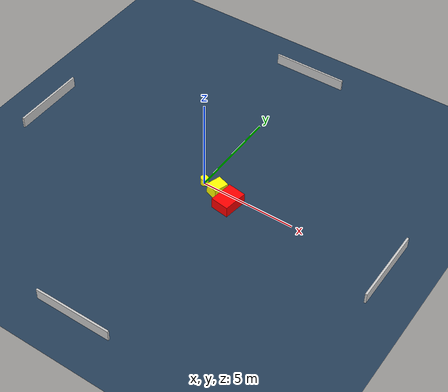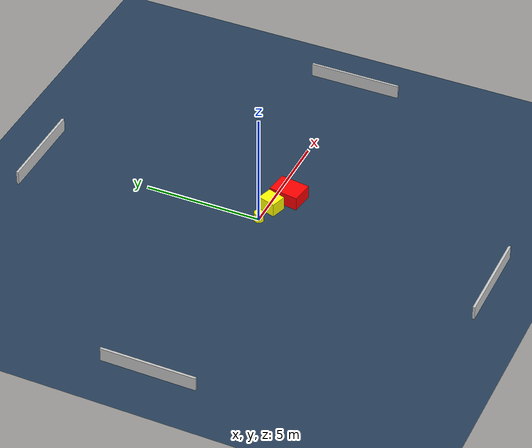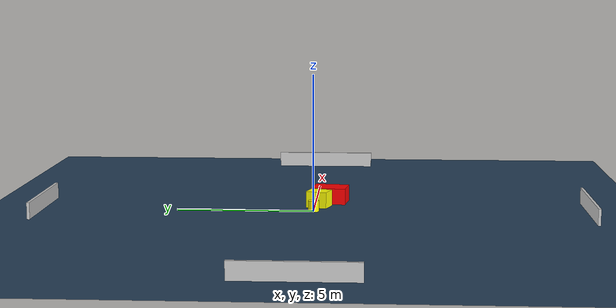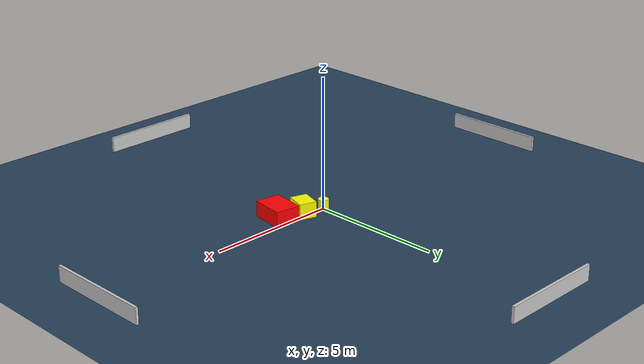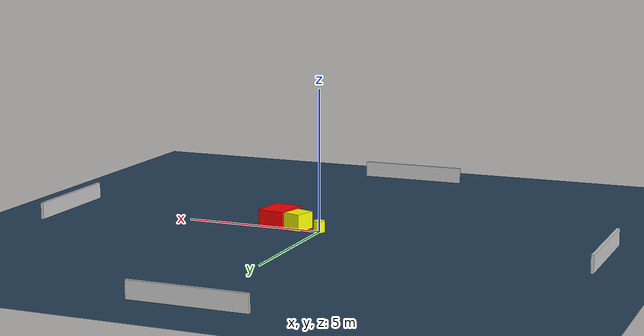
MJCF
<?xml version="1.0" ?>
<mujoco model="generated_environment">
  <option timestep="0.01" integrator="RK4" cone="elliptic"/>
  <default>
    <geom density="1"/>
  </default>
  <asset>
    <texture builtin="gradient" height="3072" name="skybox" rgb1="0.3 0.5 0.7" rgb2="0 0 0" type="skybox" width="512"/>
    <texture builtin="checker" height="300" name="groundplane" rgb1="0.2 0.3 0.4" rgb2="0.1 0.2 0.3" type="2d" width="300"/>
    <material name="groundplane" reflectance="0.2" texrepeat="5 5" texture="groundplane"/>
  </asset>
  <worldbody>
    <light dir="0 0 -1" directional="true" pos="0 0 1.5"/>
    <geom condim="3" friction="0.5 0.005 0.001" material="groundplane" name="floor" pos="0 0 0" size="0 0 0.05" type="plane"/>
    <body name="walls">
      <geom name="wall_1" condim="4" pos="-10.0 0.0 0.3" rgba="0.800000011920929 0.800000011920929 0.800000011920929 1.0" size="0.05 2.0 0.3" type="box"/>
      <geom name="wall_2" condim="4" pos="10.0 0.0 0.3" rgba="0.800000011920929 0.800000011920929 0.800000011920929 1.0" size="0.05 2.0 0.3" type="box"/>
      <geom name="wall_3" condim="4" pos="0.0 -10.0 0.3" rgba="0.800000011920929 0.800000011920929 0.800000011920929 1.0" size="2.0 0.05 0.3" type="box"/>
      <geom name="wall_4" condim="4" pos="0.0 10.0 0.3" rgba="0.800000011920929 0.800000011920929 0.800000011920929 1.0" size="2.0 0.05 0.3" type="box"/>
    </body>
    <body name="robot">
      <joint name="joint_x" type="slide" pos="0 0 0" axis="1 0 0"/>
      <joint name="joint_y" type="slide" pos="0 0 0" axis="0 1 0"/>
      <geom name="robot" type="cylinder" pos="0.0 0.0 0.2" size="0.2 0.2 0.0" mass="5.0" friction="1.0 0.005 0.0001" condim="4" rgba="1.0 1.0 0.0 1.0"/>
    </body>
    <body name="obstacle_1_movable">
      <geom name="obstacle_1_movable" condim="4" pos="0.8737557267110942 -0.15857783849734025 0.3" euler="0 0 342.46270741085823" friction="0.0 0.005 0.001" rgba="1.0 1.0 0.0 1.0" size="0.33127449311396995 0.3930766473135434 0.3" type="box" mass="0.1"/>
      <joint type="free"/>
    </body>
    <body name="obstacle_2_static">
      <geom name="obstacle_2_static" condim="4" pos="1.7627545958830613 -0.5489356956235859 0.3" euler="0 0 81.90532393319715" friction="0.0 0.005 0.001" rgba="1.0 0.0 0.0 1.0" size="0.636942396322637 0.4771467974212003 0.3" type="box"/>
    </body>
  </worldbody>
  <actuator>
    <motor name="actuator_x" joint="joint_x" gear="1" ctrlrange="-1 1"/>
    <motor name="actuator_y" joint="joint_y" gear="1" ctrlrange="-1 1"/>
  </actuator>
</mujoco>
